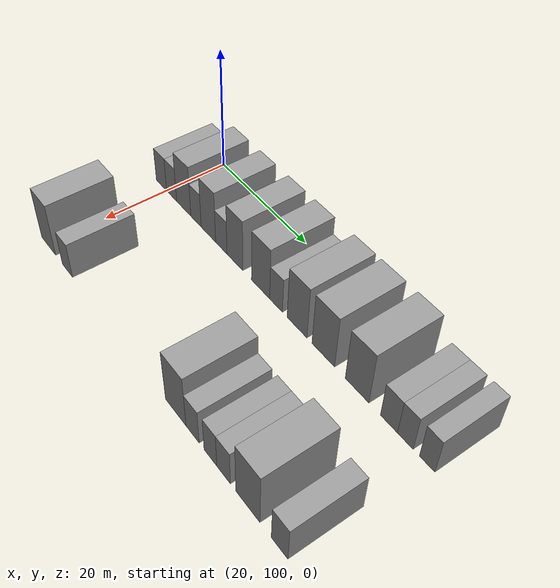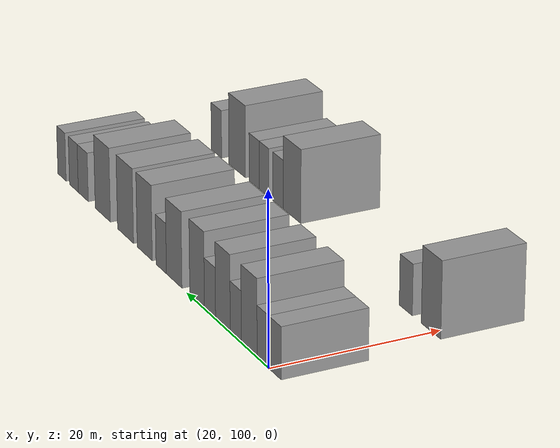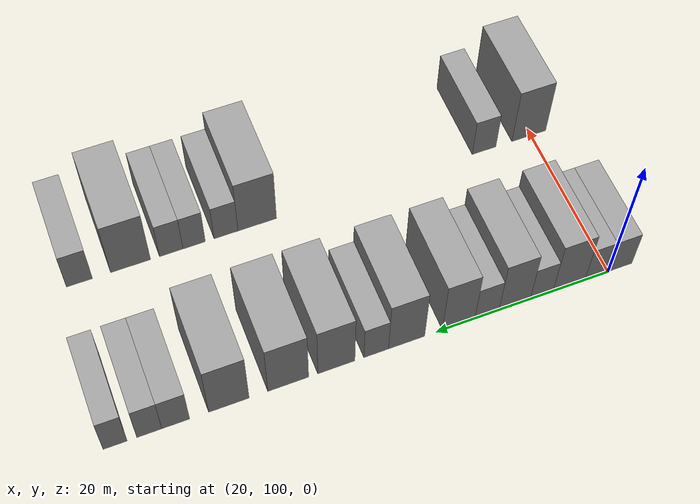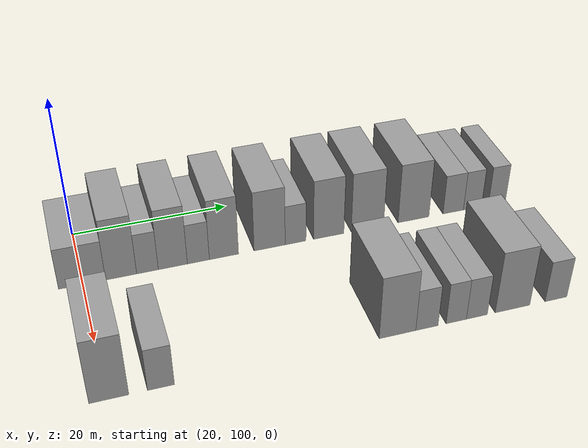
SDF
<sdf version="1.6">
 <world name="default">
  <model name="building_73">
   <static>1</static>
   <pose>25.0000 98.5716 0 0.000000 0.000000 0.000000</pose>
   <link name="link">
    <pose>0 0 3.00 0 0 0</pose>
    <collision name="collision"><geometry><box><size>10.0000 2.8826 6.0000</size></box></geometry></collision>
    <visual name="visual">
     <cast_shadows>0</cast_shadows>
     <geometry><box><size>10.0000 2.8826 6.0000</size></box></geometry>
     <material>
      <script>
       <uri>model://grey_wall/materials/scripts</uri>
       <uri>model://grey_wall/materials/textures</uri>
       <name>vrc/grey_wall</name>
      </script>
     </material>
    </visual>
   </link>
  </model>
  <model name="building_74">
   <static>1</static>
   <pose>25.0000 101.3755 0 0.000000 0.000000 0.000000</pose>
   <link name="link">
    <pose>0 0 3.00 0 0 0</pose>
    <collision name="collision"><geometry><box><size>10.0000 2.7252 6.0000</size></box></geometry></collision>
    <visual name="visual">
     <cast_shadows>0</cast_shadows>
     <geometry><box><size>10.0000 2.7252 6.0000</size></box></geometry>
     <material>
      <script>
       <uri>model://grey_wall/materials/scripts</uri>
       <uri>model://grey_wall/materials/textures</uri>
       <name>vrc/grey_wall</name>
      </script>
     </material>
    </visual>
   </link>
  </model>
  <model name="building_75">
   <static>1</static>
   <pose>25.0000 104.6256 0 0.000000 0.000000 0.000000</pose>
   <link name="link">
    <pose>0 0 4.50 0 0 0</pose>
    <collision name="collision"><geometry><box><size>10.0000 3.7750 9.0000</size></box></geometry></collision>
    <visual name="visual">
     <cast_shadows>0</cast_shadows>
     <geometry><box><size>10.0000 3.7750 9.0000</size></box></geometry>
     <material>
      <script>
       <uri>model://grey_wall/materials/scripts</uri>
       <uri>model://grey_wall/materials/textures</uri>
       <name>vrc/grey_wall</name>
      </script>
     </material>
    </visual>
   </link>
  </model>
  <model name="building_76">
   <static>1</static>
   <pose>25.0000 107.8437 0 0.000000 0.000000 0.000000</pose>
   <link name="link">
    <pose>0 0 3.00 0 0 0</pose>
    <collision name="collision"><geometry><box><size>10.0000 2.6613 6.0000</size></box></geometry></collision>
    <visual name="visual">
     <cast_shadows>0</cast_shadows>
     <geometry><box><size>10.0000 2.6613 6.0000</size></box></geometry>
     <material>
      <script>
       <uri>model://grey_wall/materials/scripts</uri>
       <uri>model://grey_wall/materials/textures</uri>
       <name>vrc/grey_wall</name>
      </script>
     </material>
    </visual>
   </link>
  </model>
  <model name="building_77">
   <static>1</static>
   <pose>25.0000 110.9807 0 0.000000 0.000000 0.000000</pose>
   <link name="link">
    <pose>0 0 4.50 0 0 0</pose>
    <collision name="collision"><geometry><box><size>10.0000 3.6126 9.0000</size></box></geometry></collision>
    <visual name="visual">
     <cast_shadows>0</cast_shadows>
     <geometry><box><size>10.0000 3.6126 9.0000</size></box></geometry>
     <material>
      <script>
       <uri>model://grey_wall/materials/scripts</uri>
       <uri>model://grey_wall/materials/textures</uri>
       <name>vrc/grey_wall</name>
      </script>
     </material>
    </visual>
   </link>
  </model>
  <model name="building_78">
   <static>1</static>
   <pose>25.0000 114.1705 0 0.000000 0.000000 0.000000</pose>
   <link name="link">
    <pose>0 0 3.00 0 0 0</pose>
    <collision name="collision"><geometry><box><size>10.0000 2.7669 6.0000</size></box></geometry></collision>
    <visual name="visual">
     <cast_shadows>0</cast_shadows>
     <geometry><box><size>10.0000 2.7669 6.0000</size></box></geometry>
     <material>
      <script>
       <uri>model://grey_wall/materials/scripts</uri>
       <uri>model://grey_wall/materials/textures</uri>
       <name>vrc/grey_wall</name>
      </script>
     </material>
    </visual>
   </link>
  </model>
  <model name="building_79">
   <static>1</static>
   <pose>25.0000 117.4091 0 0.000000 0.000000 0.000000</pose>
   <link name="link">
    <pose>0 0 4.50 0 0 0</pose>
    <collision name="collision"><geometry><box><size>10.0000 3.7104 9.0000</size></box></geometry></collision>
    <visual name="visual">
     <cast_shadows>0</cast_shadows>
     <geometry><box><size>10.0000 3.7104 9.0000</size></box></geometry>
     <material>
      <script>
       <uri>model://grey_wall/materials/scripts</uri>
       <uri>model://grey_wall/materials/textures</uri>
       <name>vrc/grey_wall</name>
      </script>
     </material>
    </visual>
   </link>
  </model>
  <model name="building_80">
   <static>1</static>
   <pose>25.0000 123.2911 0 0.000000 0.000000 0.000000</pose>
   <link name="link">
    <pose>0 0 4.50 0 0 0</pose>
    <collision name="collision"><geometry><box><size>10.0000 4.0536 9.0000</size></box></geometry></collision>
    <visual name="visual">
     <cast_shadows>0</cast_shadows>
     <geometry><box><size>10.0000 4.0536 9.0000</size></box></geometry>
     <material>
      <script>
       <uri>model://grey_wall/materials/scripts</uri>
       <uri>model://grey_wall/materials/textures</uri>
       <name>vrc/grey_wall</name>
      </script>
     </material>
    </visual>
   </link>
  </model>
  <model name="building_81">
   <static>1</static>
   <pose>25.0000 126.6876 0 0.000000 0.000000 0.000000</pose>
   <link name="link">
    <pose>0 0 3.00 0 0 0</pose>
    <collision name="collision"><geometry><box><size>10.0000 2.7394 6.0000</size></box></geometry></collision>
    <visual name="visual">
     <cast_shadows>0</cast_shadows>
     <geometry><box><size>10.0000 2.7394 6.0000</size></box></geometry>
     <material>
      <script>
       <uri>model://grey_wall/materials/scripts</uri>
       <uri>model://grey_wall/materials/textures</uri>
       <name>vrc/grey_wall</name>
      </script>
     </material>
    </visual>
   </link>
  </model>
  <model name="building_82">
   <static>1</static>
   <pose>25.0000 131.0903 0 0.000000 0.000000 0.000000</pose>
   <link name="link">
    <pose>0 0 4.50 0 0 0</pose>
    <collision name="collision"><geometry><box><size>10.0000 4.0660 9.0000</size></box></geometry></collision>
    <visual name="visual">
     <cast_shadows>0</cast_shadows>
     <geometry><box><size>10.0000 4.0660 9.0000</size></box></geometry>
     <material>
      <script>
       <uri>model://grey_wall/materials/scripts</uri>
       <uri>model://grey_wall/materials/textures</uri>
       <name>vrc/grey_wall</name>
      </script>
     </material>
    </visual>
   </link>
  </model>
  <model name="building_83">
   <static>1</static>
   <pose>25.0000 136.3307 0 0.000000 0.000000 0.000000</pose>
   <link name="link">
    <pose>0 0 4.50 0 0 0</pose>
    <collision name="collision"><geometry><box><size>10.0000 4.4148 9.0000</size></box></geometry></collision>
    <visual name="visual">
     <cast_shadows>0</cast_shadows>
     <geometry><box><size>10.0000 4.4148 9.0000</size></box></geometry>
     <material>
      <script>
       <uri>model://grey_wall/materials/scripts</uri>
       <uri>model://grey_wall/materials/textures</uri>
       <name>vrc/grey_wall</name>
      </script>
     </material>
    </visual>
   </link>
  </model>
  <model name="building_84">
   <static>1</static>
   <pose>25.0000 142.6915 0 0.000000 0.000000 0.000000</pose>
   <link name="link">
    <pose>0 0 4.50 0 0 0</pose>
    <collision name="collision"><geometry><box><size>10.0000 4.3068 9.0000</size></box></geometry></collision>
    <visual name="visual">
     <cast_shadows>0</cast_shadows>
     <geometry><box><size>10.0000 4.3068 9.0000</size></box></geometry>
     <material>
      <script>
       <uri>model://grey_wall/materials/scripts</uri>
       <uri>model://grey_wall/materials/textures</uri>
       <name>vrc/grey_wall</name>
      </script>
     </material>
    </visual>
   </link>
  </model>
  <model name="building_85">
   <static>1</static>
   <pose>25.0000 148.2996 0 0.000000 0.000000 0.000000</pose>
   <link name="link">
    <pose>0 0 3.00 0 0 0</pose>
    <collision name="collision"><geometry><box><size>10.0000 2.9093 6.0000</size></box></geometry></collision>
    <visual name="visual">
     <cast_shadows>0</cast_shadows>
     <geometry><box><size>10.0000 2.9093 6.0000</size></box></geometry>
     <material>
      <script>
       <uri>model://grey_wall/materials/scripts</uri>
       <uri>model://grey_wall/materials/textures</uri>
       <name>vrc/grey_wall</name>
      </script>
     </material>
    </visual>
   </link>
  </model>
  <model name="building_86">
   <static>1</static>
   <pose>25.0000 151.0538 0 0.000000 0.000000 0.000000</pose>
   <link name="link">
    <pose>0 0 3.00 0 0 0</pose>
    <collision name="collision"><geometry><box><size>10.0000 2.5992 6.0000</size></box></geometry></collision>
    <visual name="visual">
     <cast_shadows>0</cast_shadows>
     <geometry><box><size>10.0000 2.5992 6.0000</size></box></geometry>
     <material>
      <script>
       <uri>model://grey_wall/materials/scripts</uri>
       <uri>model://grey_wall/materials/textures</uri>
       <name>vrc/grey_wall</name>
      </script>
     </material>
    </visual>
   </link>
  </model>
  <model name="building_87">
   <static>1</static>
   <pose>25.0000 154.5870 0 0.000000 0.000000 0.000000</pose>
   <link name="link">
    <pose>0 0 3.00 0 0 0</pose>
    <collision name="collision"><geometry><box><size>10.0000 2.4672 6.0000</size></box></geometry></collision>
    <visual name="visual">
     <cast_shadows>0</cast_shadows>
     <geometry><box><size>10.0000 2.4672 6.0000</size></box></geometry>
     <material>
      <script>
       <uri>model://grey_wall/materials/scripts</uri>
       <uri>model://grey_wall/materials/textures</uri>
       <name>vrc/grey_wall</name>
      </script>
     </material>
    </visual>
   </link>
  </model>
  <model name="building_166">
   <static>1</static>
   <pose>44.0000 100.2779 0 0.000000 0.000000 0.000000</pose>
   <link name="link">
    <pose>0 0 4.50 0 0 0</pose>
    <collision name="collision"><geometry><box><size>10.0000 4.2356 9.0000</size></box></geometry></collision>
    <visual name="visual">
     <cast_shadows>0</cast_shadows>
     <geometry><box><size>10.0000 4.2356 9.0000</size></box></geometry>
     <material>
      <script>
       <uri>model://grey_wall/materials/scripts</uri>
       <uri>model://grey_wall/materials/textures</uri>
       <name>vrc/grey_wall</name>
      </script>
     </material>
    </visual>
   </link>
  </model>
  <model name="building_167">
   <static>1</static>
   <pose>44.0000 105.8570 0 0.000000 0.000000 0.000000</pose>
   <link name="link">
    <pose>0 0 3.00 0 0 0</pose>
    <collision name="collision"><geometry><box><size>10.0000 2.9226 6.0000</size></box></geometry></collision>
    <visual name="visual">
     <cast_shadows>0</cast_shadows>
     <geometry><box><size>10.0000 2.9226 6.0000</size></box></geometry>
     <material>
      <script>
       <uri>model://grey_wall/materials/scripts</uri>
       <uri>model://grey_wall/materials/textures</uri>
       <name>vrc/grey_wall</name>
      </script>
     </material>
    </visual>
   </link>
  </model>
  <model name="building_168">
   <static>1</static>
   <pose>44.0000 132.9837 0 0.000000 0.000000 0.000000</pose>
   <link name="link">
    <pose>0 0 4.50 0 0 0</pose>
    <collision name="collision"><geometry><box><size>10.0000 4.4436 9.0000</size></box></geometry></collision>
    <visual name="visual">
     <cast_shadows>0</cast_shadows>
     <geometry><box><size>10.0000 4.4436 9.0000</size></box></geometry>
     <material>
      <script>
       <uri>model://grey_wall/materials/scripts</uri>
       <uri>model://grey_wall/materials/textures</uri>
       <name>vrc/grey_wall</name>
      </script>
     </material>
    </visual>
   </link>
  </model>
  <model name="building_169">
   <static>1</static>
   <pose>44.0000 136.5744 0 0.000000 0.000000 0.000000</pose>
   <link name="link">
    <pose>0 0 3.00 0 0 0</pose>
    <collision name="collision"><geometry><box><size>10.0000 2.7379 6.0000</size></box></geometry></collision>
    <visual name="visual">
     <cast_shadows>0</cast_shadows>
     <geometry><box><size>10.0000 2.7379 6.0000</size></box></geometry>
     <material>
      <script>
       <uri>model://grey_wall/materials/scripts</uri>
       <uri>model://grey_wall/materials/textures</uri>
       <name>vrc/grey_wall</name>
      </script>
     </material>
    </visual>
   </link>
  </model>
  <model name="building_170">
   <static>1</static>
   <pose>44.0000 140.2117 0 0.000000 0.000000 0.000000</pose>
   <link name="link">
    <pose>0 0 3.00 0 0 0</pose>
    <collision name="collision"><geometry><box><size>10.0000 2.5367 6.0000</size></box></geometry></collision>
    <visual name="visual">
     <cast_shadows>0</cast_shadows>
     <geometry><box><size>10.0000 2.5367 6.0000</size></box></geometry>
     <material>
      <script>
       <uri>model://grey_wall/materials/scripts</uri>
       <uri>model://grey_wall/materials/textures</uri>
       <name>vrc/grey_wall</name>
      </script>
     </material>
    </visual>
   </link>
  </model>
  <model name="building_171">
   <static>1</static>
   <pose>44.0000 142.8016 0 0.000000 0.000000 0.000000</pose>
   <link name="link">
    <pose>0 0 3.00 0 0 0</pose>
    <collision name="collision"><geometry><box><size>10.0000 2.6431 6.0000</size></box></geometry></collision>
    <visual name="visual">
     <cast_shadows>0</cast_shadows>
     <geometry><box><size>10.0000 2.6431 6.0000</size></box></geometry>
     <material>
      <script>
       <uri>model://grey_wall/materials/scripts</uri>
       <uri>model://grey_wall/materials/textures</uri>
       <name>vrc/grey_wall</name>
      </script>
     </material>
    </visual>
   </link>
  </model>
  <model name="building_172">
   <static>1</static>
   <pose>44.0000 147.3482 0 0.000000 0.000000 0.000000</pose>
   <link name="link">
    <pose>0 0 4.50 0 0 0</pose>
    <collision name="collision"><geometry><box><size>10.0000 4.4499 9.0000</size></box></geometry></collision>
    <visual name="visual">
     <cast_shadows>0</cast_shadows>
     <geometry><box><size>10.0000 4.4499 9.0000</size></box></geometry>
     <material>
      <script>
       <uri>model://grey_wall/materials/scripts</uri>
       <uri>model://grey_wall/materials/textures</uri>
       <name>vrc/grey_wall</name>
      </script>
     </material>
    </visual>
   </link>
  </model>
  <model name="building_173">
   <static>1</static>
   <pose>44.0000 152.9992 0 0.000000 0.000000 0.000000</pose>
   <link name="link">
    <pose>0 0 3.00 0 0 0</pose>
    <collision name="collision"><geometry><box><size>10.0000 2.8520 6.0000</size></box></geometry></collision>
    <visual name="visual">
     <cast_shadows>0</cast_shadows>
     <geometry><box><size>10.0000 2.8520 6.0000</size></box></geometry>
     <material>
      <script>
       <uri>model://grey_wall/materials/scripts</uri>
       <uri>model://grey_wall/materials/textures</uri>
       <name>vrc/grey_wall</name>
      </script>
     </material>
    </visual>
   </link>
  </model>
 </world>
</sdf>
